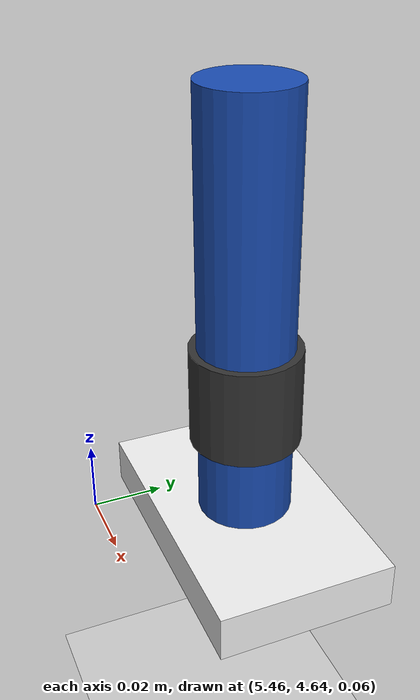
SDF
<sdf version="1.10">
 <world name="toilet_world">
  <model name="brush">
   <static>false</static>
   <link name="mirror_brush_body">
    <inertial>
     <mass>0.12</mass>
     <pose>0 0 0.050000000000000003 0 0 0</pose>
     <inertia>
      <ixx>0.00059999999999999995</ixx>
      <ixy>0</ixy>
      <ixz>0</ixz>
      <iyy>0.0011999999999999999</iyy>
      <iyz>0</iyz>
      <izz>0.00059999999999999995</izz>
     </inertia>
    </inertial>
    <visual name="handle_visual">
     <pose>0 0 0.065000000000000002 0 0 0</pose>
     <geometry><cylinder><radius>0.012</radius><length>0.11</length></cylinder></geometry>
     <material>
      <ambient>0.100000001 0.300000012 0.699999988 1</ambient>
      <diffuse>0.100000001 0.300000012 0.699999988 1</diffuse>
      <specular>0.300000012 0.300000012 0.300000012 1</specular>
     </material>
    </visual>
    <collision name="handle_collision">
     <pose>0 0 0.065000000000000002 0 0 0</pose>
     <geometry><cylinder><radius>0.012</radius><length>0.11</length></cylinder></geometry>
    </collision>
    <visual name="grip_visual">
     <pose>0 0 0.044999999999999998 0 0 0</pose>
     <geometry><cylinder><radius>0.014</radius><length>0.025000000000000001</length></cylinder></geometry>
     <material>
      <ambient>0.200000003 0.200000003 0.200000003 1</ambient>
      <diffuse>0.200000003 0.200000003 0.200000003 1</diffuse>
      <specular>0.0500000007 0.0500000007 0.0500000007 1</specular>
     </material>
    </visual>
    <visual name="head_visual">
     <pose>0 0 0.0060000000000000001 0 0 0</pose>
     <geometry><box><size>0.074999999999999997 0.044999999999999998 0.012</size></box></geometry>
     <material>
      <ambient>0.949999988 0.949999988 0.949999988 1</ambient>
      <diffuse>0.949999988 0.949999988 0.949999988 1</diffuse>
      <specular>0.200000003 0.200000003 0.200000003 1</specular>
     </material>
    </visual>
    <collision name="head_collision">
     <pose>0 0 0.0060000000000000001 0 0 0</pose>
     <geometry><box><size>0.074999999999999997 0.044999999999999998 0.012</size></box></geometry>
    </collision>
    <visual name="bristles_1_1">
     <pose>-0.025000000000000001 -0.014999999999999999 -0.002 0 0 0</pose>
     <geometry>
      <cylinder><radius>0.00020000000000000001</radius><length>0.0060000000000000001</length></cylinder>
     </geometry>
     <material>
      <ambient>0.850000024 0.899999976 1 1</ambient>
      <diffuse>0.850000024 0.899999976 1 1</diffuse>
      <specular>0.0500000007 0.0500000007 0.0500000007 1</specular>
     </material>
    </visual>
    <visual name="bristles_1_2">
     <pose>-0.025000000000000001 -0.0070000000000000001 -0.002 0 0 0</pose>
     <geometry>
      <cylinder><radius>0.00020000000000000001</radius><length>0.0060000000000000001</length></cylinder>
     </geometry>
     <material>
      <ambient>0.850000024 0.899999976 1 1</ambient>
      <diffuse>0.850000024 0.899999976 1 1</diffuse>
      <specular>0.0500000007 0.0500000007 0.0500000007 1</specular>
     </material>
    </visual>
    <visual name="bristles_1_3">
     <pose>-0.025000000000000001 0 -0.002 0 0 0</pose>
     <geometry>
      <cylinder><radius>0.00020000000000000001</radius><length>0.0060000000000000001</length></cylinder>
     </geometry>
     <material>
      <ambient>0.850000024 0.899999976 1 1</ambient>
      <diffuse>0.850000024 0.899999976 1 1</diffuse>
      <specular>0.0500000007 0.0500000007 0.0500000007 1</specular>
     </material>
    </visual>
    <visual name="bristles_1_4">
     <pose>-0.025000000000000001 0.0070000000000000001 -0.002 0 0 0</pose>
     <geometry>
      <cylinder><radius>0.00020000000000000001</radius><length>0.0060000000000000001</length></cylinder>
     </geometry>
     <material>
      <ambient>0.850000024 0.899999976 1 1</ambient>
      <diffuse>0.850000024 0.899999976 1 1</diffuse>
      <specular>0.0500000007 0.0500000007 0.0500000007 1</specular>
     </material>
    </visual>
    <visual name="bristles_1_5">
     <pose>-0.025000000000000001 0.014999999999999999 -0.002 0 0 0</pose>
     <geometry>
      <cylinder><radius>0.00020000000000000001</radius><length>0.0060000000000000001</length></cylinder>
     </geometry>
     <material>
      <ambient>0.850000024 0.899999976 1 1</ambient>
      <diffuse>0.850000024 0.899999976 1 1</diffuse>
      <specular>0.0500000007 0.0500000007 0.0500000007 1</specular>
     </material>
    </visual>
    <visual name="bristles_2_1">
     <pose>-0.012 -0.014999999999999999 -0.002 0 0 0</pose>
     <geometry>
      <cylinder><radius>0.00020000000000000001</radius><length>0.0060000000000000001</length></cylinder>
     </geometry>
     <material>
      <ambient>0.850000024 0.899999976 1 1</ambient>
      <diffuse>0.850000024 0.899999976 1 1</diffuse>
      <specular>0.0500000007 0.0500000007 0.0500000007 1</specular>
     </material>
    </visual>
    <visual name="bristles_2_2">
     <pose>-0.012 -0.0070000000000000001 -0.002 0 0 0</pose>
     <geometry>
      <cylinder><radius>0.00020000000000000001</radius><length>0.0060000000000000001</length></cylinder>
     </geometry>
     <material>
      <ambient>0.850000024 0.899999976 1 1</ambient>
      <diffuse>0.850000024 0.899999976 1 1</diffuse>
      <specular>0.0500000007 0.0500000007 0.0500000007 1</specular>
     </material>
    </visual>
    <visual name="bristles_2_3">
     <pose>-0.012 0 -0.002 0 0 0</pose>
     <geometry>
      <cylinder><radius>0.00020000000000000001</radius><length>0.0060000000000000001</length></cylinder>
     </geometry>
     <material>
      <ambient>0.850000024 0.899999976 1 1</ambient>
      <diffuse>0.850000024 0.899999976 1 1</diffuse>
      <specular>0.0500000007 0.0500000007 0.0500000007 1</specular>
     </material>
    </visual>
    <visual name="bristles_2_4">
     <pose>-0.012 0.0070000000000000001 -0.002 0 0 0</pose>
     <geometry>
      <cylinder><radius>0.00020000000000000001</radius><length>0.0060000000000000001</length></cylinder>
     </geometry>
     <material>
      <ambient>0.850000024 0.899999976 1 1</ambient>
      <diffuse>0.850000024 0.899999976 1 1</diffuse>
      <specular>0.0500000007 0.0500000007 0.0500000007 1</specular>
     </material>
    </visual>
    <visual name="bristles_2_5">
     <pose>-0.012 0.014999999999999999 -0.002 0 0 0</pose>
     <geometry>
      <cylinder><radius>0.00020000000000000001</radius><length>0.0060000000000000001</length></cylinder>
     </geometry>
     <material>
      <ambient>0.850000024 0.899999976 1 1</ambient>
      <diffuse>0.850000024 0.899999976 1 1</diffuse>
      <specular>0.0500000007 0.0500000007 0.0500000007 1</specular>
     </material>
    </visual>
    <visual name="bristles_3_1">
     <pose>0 -0.014999999999999999 -0.002 0 0 0</pose>
     <geometry>
      <cylinder><radius>0.00020000000000000001</radius><length>0.0060000000000000001</length></cylinder>
     </geometry>
     <material>
      <ambient>0.850000024 0.899999976 1 1</ambient>
      <diffuse>0.850000024 0.899999976 1 1</diffuse>
      <specular>0.0500000007 0.0500000007 0.0500000007 1</specular>
     </material>
    </visual>
    <visual name="bristles_3_2">
     <pose>0 -0.0070000000000000001 -0.002 0 0 0</pose>
     <geometry>
      <cylinder><radius>0.00020000000000000001</radius><length>0.0060000000000000001</length></cylinder>
     </geometry>
     <material>
      <ambient>0.850000024 0.899999976 1 1</ambient>
      <diffuse>0.850000024 0.899999976 1 1</diffuse>
      <specular>0.0500000007 0.0500000007 0.0500000007 1</specular>
     </material>
    </visual>
    <visual name="bristles_3_3">
     <pose>0 0 -0.002 0 0 0</pose>
     <geometry>
      <cylinder><radius>0.00020000000000000001</radius><length>0.0060000000000000001</length></cylinder>
     </geometry>
     <material>
      <ambient>0.850000024 0.899999976 1 1</ambient>
      <diffuse>0.850000024 0.899999976 1 1</diffuse>
      <specular>0.0500000007 0.0500000007 0.0500000007 1</specular>
     </material>
    </visual>
    <visual name="bristles_3_4">
     <pose>0 0.0070000000000000001 -0.002 0 0 0</pose>
     <geometry>
      <cylinder><radius>0.00020000000000000001</radius><length>0.0060000000000000001</length></cylinder>
     </geometry>
     <material>
      <ambient>0.850000024 0.899999976 1 1</ambient>
      <diffuse>0.850000024 0.899999976 1 1</diffuse>
      <specular>0.0500000007 0.0500000007 0.0500000007 1</specular>
     </material>
    </visual>
    <visual name="bristles_3_5">
     <pose>0 0.014999999999999999 -0.002 0 0 0</pose>
     <geometry>
      <cylinder><radius>0.00020000000000000001</radius><length>0.0060000000000000001</length></cylinder>
     </geometry>
     <material>
      <ambient>0.850000024 0.899999976 1 1</ambient>
      <diffuse>0.850000024 0.899999976 1 1</diffuse>
      <specular>0.0500000007 0.0500000007 0.0500000007 1</specular>
     </material>
    </visual>
    <visual name="bristles_4_1">
     <pose>0.012 -0.014999999999999999 -0.002 0 0 0</pose>
     <geometry>
      <cylinder><radius>0.00020000000000000001</radius><length>0.0060000000000000001</length></cylinder>
     </geometry>
     <material>
      <ambient>0.850000024 0.899999976 1 1</ambient>
      <diffuse>0.850000024 0.899999976 1 1</diffuse>
      <specular>0.0500000007 0.0500000007 0.0500000007 1</specular>
     </material>
    </visual>
    <visual name="bristles_4_2">
     <pose>0.012 -0.0070000000000000001 -0.002 0 0 0</pose>
     <geometry>
      <cylinder><radius>0.00020000000000000001</radius><length>0.0060000000000000001</length></cylinder>
     </geometry>
     <material>
      <ambient>0.850000024 0.899999976 1 1</ambient>
      <diffuse>0.850000024 0.899999976 1 1</diffuse>
      <specular>0.0500000007 0.0500000007 0.0500000007 1</specular>
     </material>
    </visual>
    <visual name="bristles_4_3">
     <pose>0.012 0 -0.002 0 0 0</pose>
     <geometry>
      <cylinder><radius>0.00020000000000000001</radius><length>0.0060000000000000001</length></cylinder>
     </geometry>
     <material>
      <ambient>0.850000024 0.899999976 1 1</ambient>
      <diffuse>0.850000024 0.899999976 1 1</diffuse>
      <specular>0.0500000007 0.0500000007 0.0500000007 1</specular>
     </material>
    </visual>
    <visual name="bristles_4_4">
     <pose>0.012 0.0070000000000000001 -0.002 0 0 0</pose>
     <geometry>
      <cylinder><radius>0.00020000000000000001</radius><length>0.0060000000000000001</length></cylinder>
     </geometry>
     <material>
      <ambient>0.850000024 0.899999976 1 1</ambient>
      <diffuse>0.850000024 0.899999976 1 1</diffuse>
      <specular>0.0500000007 0.0500000007 0.0500000007 1</specular>
     </material>
    </visual>
    <visual name="bristles_4_5">
     <pose>0.012 0.014999999999999999 -0.002 0 0 0</pose>
     <geometry>
      <cylinder><radius>0.00020000000000000001</radius><length>0.0060000000000000001</length></cylinder>
     </geometry>
     <material>
      <ambient>0.850000024 0.899999976 1 1</ambient>
      <diffuse>0.850000024 0.899999976 1 1</diffuse>
      <specular>0.0500000007 0.0500000007 0.0500000007 1</specular>
     </material>
    </visual>
    <visual name="bristles_5_1">
     <pose>0.025000000000000001 -0.014999999999999999 -0.002 0 0 0</pose>
     <geometry>
      <cylinder><radius>0.00020000000000000001</radius><length>0.0060000000000000001</length></cylinder>
     </geometry>
     <material>
      <ambient>0.850000024 0.899999976 1 1</ambient>
      <diffuse>0.850000024 0.899999976 1 1</diffuse>
      <specular>0.0500000007 0.0500000007 0.0500000007 1</specular>
     </material>
    </visual>
    <visual name="bristles_5_2">
     <pose>0.025000000000000001 -0.0070000000000000001 -0.002 0 0 0</pose>
     <geometry>
      <cylinder><radius>0.00020000000000000001</radius><length>0.0060000000000000001</length></cylinder>
     </geometry>
     <material>
      <ambient>0.850000024 0.899999976 1 1</ambient>
      <diffuse>0.850000024 0.899999976 1 1</diffuse>
      <specular>0.0500000007 0.0500000007 0.0500000007 1</specular>
     </material>
    </visual>
    <visual name="bristles_5_3">
     <pose>0.025000000000000001 0 -0.002 0 0 0</pose>
     <geometry>
      <cylinder><radius>0.00020000000000000001</radius><length>0.0060000000000000001</length></cylinder>
     </geometry>
     <material>
      <ambient>0.850000024 0.899999976 1 1</ambient>
      <diffuse>0.850000024 0.899999976 1 1</diffuse>
      <specular>0.0500000007 0.0500000007 0.0500000007 1</specular>
     </material>
    </visual>
    <visual name="bristles_5_4">
     <pose>0.025000000000000001 0.0070000000000000001 -0.002 0 0 0</pose>
     <geometry>
      <cylinder><radius>0.00020000000000000001</radius><length>0.0060000000000000001</length></cylinder>
     </geometry>
     <material>
      <ambient>0.850000024 0.899999976 1 1</ambient>
      <diffuse>0.850000024 0.899999976 1 1</diffuse>
      <specular>0.0500000007 0.0500000007 0.0500000007 1</specular>
     </material>
    </visual>
    <visual name="bristles_5_5">
     <pose>0.025000000000000001 0.014999999999999999 -0.002 0 0 0</pose>
     <geometry>
      <cylinder><radius>0.00020000000000000001</radius><length>0.0060000000000000001</length></cylinder>
     </geometry>
     <material>
      <ambient>0.850000024 0.899999976 1 1</ambient>
      <diffuse>0.850000024 0.899999976 1 1</diffuse>
      <specular>0.0500000007 0.0500000007 0.0500000007 1</specular>
     </material>
    </visual>
    <collision name="bristles_collision">
     <pose>0 0 -0.002 0 0 0</pose>
     <geometry><box><size>0.065000000000000002 0.040000000000000001 0.0060000000000000001</size></box></geometry>
     <surface>
      <friction><ode><mu>0.69999999999999996</mu><mu2>0.69999999999999996</mu2></ode></friction>
      <bounce><restitution_coefficient>0.050000000000000003</restitution_coefficient></bounce>
      <contact>
       <ode>
        <soft_cfm>0.10000000000000001</soft_cfm>
        <soft_erp>0.20000000000000001</soft_erp>
        <kp>1000</kp>
        <kd>10</kd>
       </ode>
      </contact>
     </surface>
    </collision>
   </link>
   <pose>5.5 4.6700868606567383 0.069750659167766599 -0.00096639211925561303 -3.8021204722392933e-14 1.6900703217707289e-16</pose>
  </model>
  <model name="ground_plane">
   <static>true</static>
   <link name="link">
    <collision name="collision">
     <geometry><plane><normal>0 0 1</normal><size>100 100</size></plane></geometry>
     <surface><friction><ode><mu>100</mu><mu2>50</mu2></ode></friction></surface>
    </collision>
    <visual name="visual">
     <cast_shadows>false</cast_shadows>
     <geometry><plane><normal>0 0 1</normal><size>100 100</size></plane></geometry>
     <material>
      <script><uri>file://media/materials/scripts/gazebo.material</uri><name>Gazebo/Grey</name></script>
     </material>
    </visual>
    <inertial>
     <mass>1</mass>
     <inertia><ixx>1</ixx><ixy>0</ixy><ixz>0</ixz><iyy>1</iyy><iyz>0</iyz><izz>1</izz></inertia>
    </inertial>
   </link>
  </model>
 </world>
</sdf>
